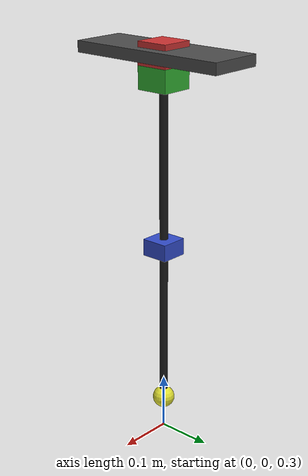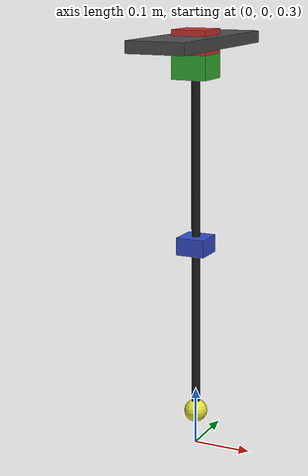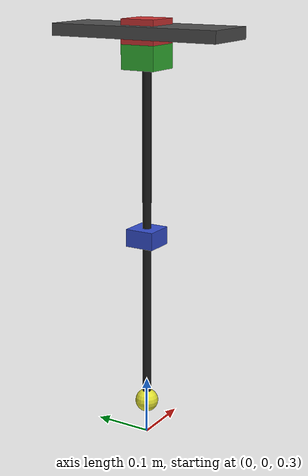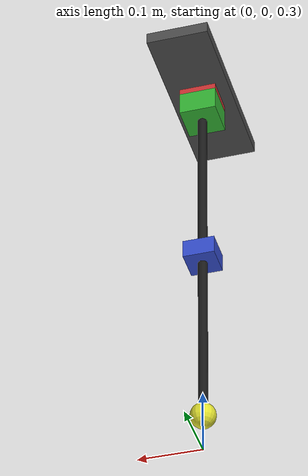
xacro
<?xml version="1.0"?>
<robot xmlns:xacro="http://www.ros.org/wiki/xacro" name="byte_leg">

  <xacro:arg name="controllers_config" default="$(find byte_leg_control)/config/controllers.yaml"/>
  <xacro:arg name="use_sim" default="true"/>

  <xacro:property name="rig_height"    value="1.0"/>
  <xacro:property name="thigh_length"  value="0.30"/>
  <xacro:property name="shank_length"  value="0.30"/>
  <xacro:property name="rod_radius"    value="0.0075"/>
  <xacro:property name="foot_radius"   value="0.02"/>

  <xacro:property name="motor_mass"    value="0.43"/>
  <xacro:property name="rod_mass"      value="0.05"/>
  <xacro:property name="foot_mass"     value="0.024"/>

  <xacro:property name="slide_lower"   value="-0.38"/>
  <xacro:property name="slide_upper"   value="0.20"/>

  <xacro:macro name="motor_inertial" params="mass">
    <inertial>
      <origin xyz="0 0 0" rpy="0 0 0"/>
      <mass value="${mass}"/>
      <inertia ixx="${mass*(0.060*0.060 + 0.040*0.040)/12.0}"
               iyy="${mass*(0.060*0.060 + 0.040*0.040)/12.0}"
               izz="${mass*(0.060*0.060 + 0.060*0.060)/12.0}"
               ixy="0" ixz="0" iyz="0"/>
    </inertial>
  </xacro:macro>

  <xacro:macro name="rod_inertial" params="mass length radius">
    <inertial>
      <origin xyz="0 0 ${-length/2.0}" rpy="0 0 0"/>
      <mass value="${mass}"/>
      <inertia ixx="${mass*(3.0*radius*radius + length*length)/12.0}"
               iyy="${mass*(3.0*radius*radius + length*length)/12.0}"
               izz="${mass*radius*radius/2.0}"
               ixy="0" ixz="0" iyz="0"/>
    </inertial>
  </xacro:macro>

  <xacro:macro name="sphere_inertial" params="mass radius">
    <inertial>
      <origin xyz="0 0 0" rpy="0 0 0"/>
      <mass value="${mass}"/>
      <inertia ixx="${2.0*mass*radius*radius/5.0}"
               iyy="${2.0*mass*radius*radius/5.0}"
               izz="${2.0*mass*radius*radius/5.0}"
               ixy="0" ixz="0" iyz="0"/>
    </inertial>
  </xacro:macro>

  <link name="world"/>

  <link name="rig_frame">
    <inertial>
      <origin xyz="0 0 0" rpy="0 0 0"/>
      <mass value="1.0"/>
      <inertia ixx="0.01" iyy="0.01" izz="0.01" ixy="0" ixz="0" iyz="0"/>
    </inertial>
    <visual>
      <origin xyz="0 0 0" rpy="0 0 0"/>
      <geometry><box size="0.1 0.3 0.02"/></geometry>
      <material name="rig_grey"><color rgba="0.3 0.3 0.3 1"/></material>
    </visual>
  </link>
  <joint name="rig_mount" type="fixed">
    <parent link="world"/>
    <child  link="rig_frame"/>
    <origin xyz="0 0 ${rig_height}" rpy="0 0 0"/>
  </joint>

  <link name="base_link">
    <xacro:motor_inertial mass="${motor_mass}"/>
    <visual>
      <origin xyz="0 0 0" rpy="0 0 0"/>
      <geometry><box size="0.06 0.06 0.04"/></geometry>
      <material name="abduct_red"><color rgba="0.8 0.2 0.2 1"/></material>
    </visual>
    <collision>
      <origin xyz="0 0 0" rpy="0 0 0"/>
      <geometry><box size="0.06 0.06 0.04"/></geometry>
    </collision>
  </link>
  <joint name="base_slide" type="prismatic">
    <parent link="rig_frame"/>
    <child  link="base_link"/>
    <origin xyz="0 0 0" rpy="0 0 0"/>
    <axis xyz="0 0 1"/>
    <limit lower="${slide_lower}" upper="${slide_upper}" effort="200" velocity="2.0"/>
    <dynamics damping="5.0" friction="1.0"/>
  </joint>

  <link name="hip_abduct_link">
    <xacro:motor_inertial mass="${motor_mass}"/>
    <visual>
      <origin xyz="0 0 0" rpy="0 0 0"/>
      <geometry><box size="0.06 0.06 0.04"/></geometry>
      <material name="pitch_green"><color rgba="0.2 0.7 0.2 1"/></material>
    </visual>
  </link>
  <joint name="hip_abduct" type="revolute">
    <parent link="base_link"/>
    <child  link="hip_abduct_link"/>
    <origin xyz="0 0 -0.04" rpy="0 0 0"/>
    <axis xyz="1 0 0"/>
    <limit lower="${-pi}" upper="${pi}" effort="20" velocity="20"/>
    <dynamics damping="0.05" friction="0.02"/>
  </joint>

  <link name="thigh_link">
    <xacro:rod_inertial mass="${rod_mass}" length="${thigh_length}" radius="${rod_radius}"/>
    <visual>
      <origin xyz="0 0 ${-thigh_length/2.0}" rpy="0 0 0"/>
      <geometry><cylinder radius="${rod_radius}" length="${thigh_length}"/></geometry>
      <material name="carbon_black"><color rgba="0.1 0.1 0.1 1"/></material>
    </visual>
    <collision>
      <origin xyz="0 0 ${-thigh_length/2.0}" rpy="0 0 0"/>
      <geometry><cylinder radius="${rod_radius}" length="${thigh_length}"/></geometry>
    </collision>
  </link>
  <joint name="hip_pitch" type="revolute">
    <parent link="hip_abduct_link"/>
    <child  link="thigh_link"/>
    <origin xyz="0 0 0" rpy="0 0 0"/>
    <axis xyz="0 1 0"/>
    <limit lower="${-pi}" upper="${pi}" effort="20" velocity="20"/>
    <dynamics damping="0.05" friction="0.02"/>
  </joint>

  <link name="knee_link">
    <xacro:motor_inertial mass="${motor_mass}"/>
    <visual>
      <origin xyz="0 0 0" rpy="0 0 0"/>
      <geometry><box size="0.05 0.05 0.03"/></geometry>
      <material name="knee_blue"><color rgba="0.2 0.3 0.8 1"/></material>
    </visual>
  </link>
  <joint name="knee_mount" type="fixed">
    <parent link="thigh_link"/>
    <child  link="knee_link"/>
    <origin xyz="0 0 ${-thigh_length}" rpy="0 0 0"/>
  </joint>

  <link name="shank_link">
    <xacro:rod_inertial mass="${rod_mass}" length="${shank_length}" radius="${rod_radius}"/>
    <visual>
      <origin xyz="0 0 ${-shank_length/2.0}" rpy="0 0 0"/>
      <geometry><cylinder radius="${rod_radius}" length="${shank_length}"/></geometry>
      <material name="carbon_black"/>
    </visual>
    <collision>
      <origin xyz="0 0 ${-shank_length/2.0}" rpy="0 0 0"/>
      <geometry><cylinder radius="${rod_radius}" length="${shank_length}"/></geometry>
    </collision>
  </link>
  <joint name="knee" type="revolute">
    <parent link="knee_link"/>
    <child  link="shank_link"/>
    <origin xyz="0 0 0" rpy="0 0 0"/>
    <axis xyz="0 1 0"/>
    <limit lower="${-pi}" upper="${pi}" effort="20" velocity="20"/>
    <dynamics damping="0.05" friction="0.02"/>
  </joint>

  <link name="foot_link">
    <xacro:sphere_inertial mass="${foot_mass}" radius="${foot_radius}"/>
    <visual>
      <origin xyz="0 0 0" rpy="0 0 0"/>
      <geometry><sphere radius="${foot_radius}"/></geometry>
      <material name="ball_yellow"><color rgba="0.9 0.9 0.2 1"/></material>
    </visual>
    <collision>
      <origin xyz="0 0 0" rpy="0 0 0"/>
      <geometry><sphere radius="${foot_radius}"/></geometry>
      <surface>
        <friction><ode><mu>1.2</mu><mu2>1.2</mu2></ode></friction>
      </surface>
    </collision>
  </link>
  <joint name="foot_fixed" type="fixed">
    <parent link="shank_link"/>
    <child  link="foot_link"/>
    <origin xyz="0 0 ${-shank_length}" rpy="0 0 0"/>
  </joint>

  <ros2_control name="byte_leg_system" type="system">
    <hardware>
      <plugin>gz_ros2_control/GazeboSimSystem</plugin>
      <param name="position_proportional_gain">200.0</param>
    </hardware>
    <joint name="hip_abduct">
      <command_interface name="position"/>
      <state_interface name="position"/>
      <state_interface name="velocity"/>
    </joint>
    <joint name="hip_pitch">
      <command_interface name="position"/>
      <state_interface name="position"/>
      <state_interface name="velocity"/>
    </joint>
    <joint name="knee">
      <command_interface name="position"/>
      <state_interface name="position"/>
      <state_interface name="velocity"/>
    </joint>
  </ros2_control>

  <gazebo>
    <plugin filename="gz_ros2_control-system" name="gz_ros2_control::GazeboSimROS2ControlPlugin">
      <parameters>$(arg controllers_config)</parameters>
    </plugin>
  </gazebo>

</robot>
